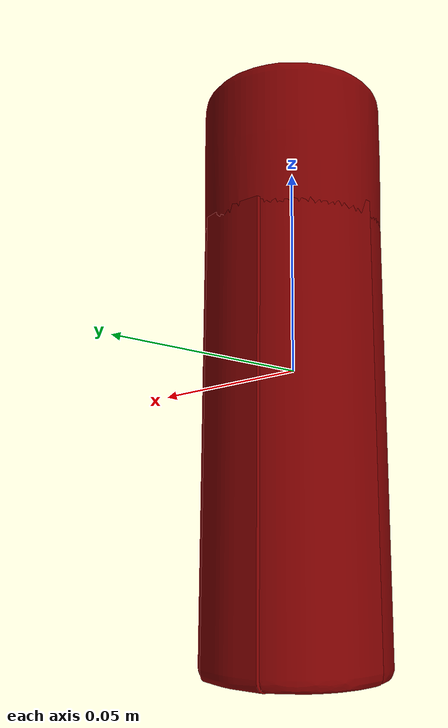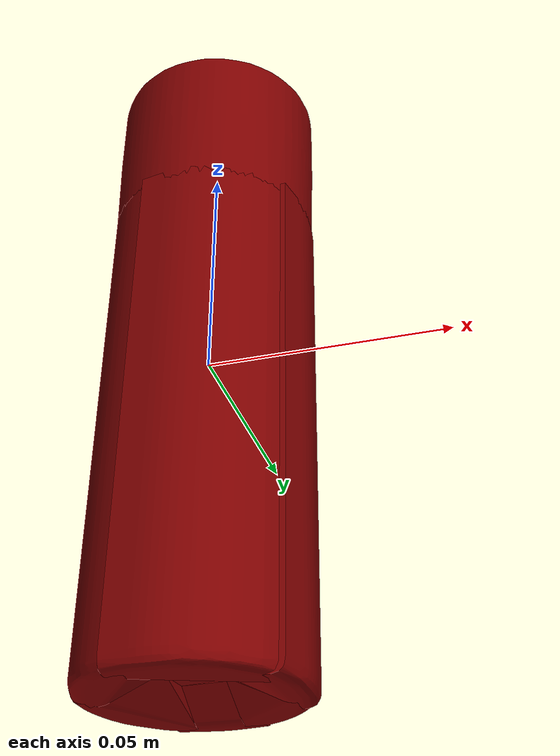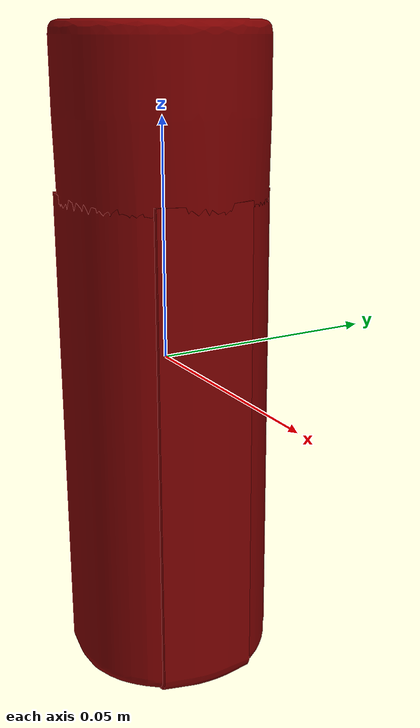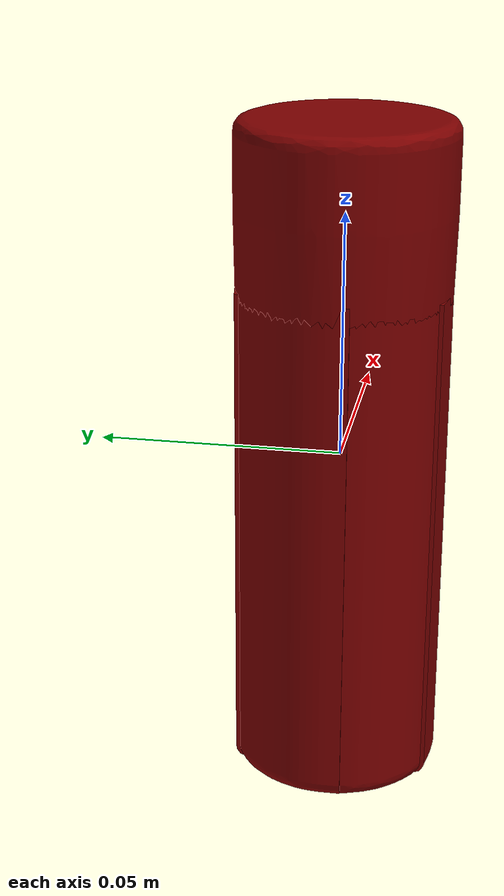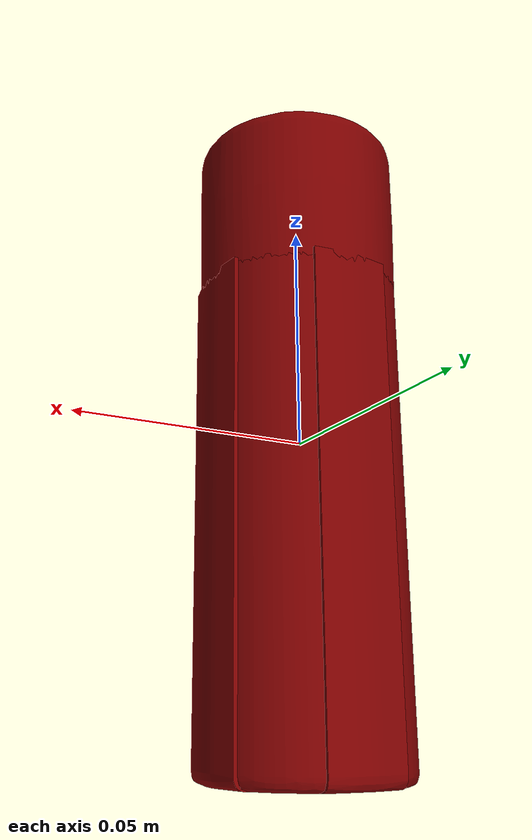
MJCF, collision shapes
<?xml version='1.0' encoding='utf-8'?>
<mujoco model="water_bottle_10">
  <asset>
    <mesh file="visual/model_normalized_0.obj" name="model_normalized_0_vis" scale="0.135 0.135 0.135" refquat="1.0 0.0 0.0 0.0" />
    <mesh file="visual/model_normalized_1.obj" name="model_normalized_1_vis" scale="0.135 0.135 0.135" refquat="1.0 0.0 0.0 0.0" />
    <material name="lambert2SG.001" specular="0.5" shininess="0.8964600110000001" rgba="0.029863 0.011039 0.011039 1.0" />
    <material name="phong1SG" specular="0.5" shininess="0.15999998099999999" rgba="1.000000 1.000000 1.000000 1.0" />
    <mesh file="collision/collision_mesh_collision_0.obj" name="water_collision_mesh_0" scale="0.135 0.135 0.135" refquat="1.0 0.0 0.0 0.0" />
    <mesh file="collision/collision_mesh_collision_1.obj" name="water_collision_mesh_1" scale="0.135 0.135 0.135" refquat="1.0 0.0 0.0 0.0" />
    <mesh file="collision/collision_mesh_collision_2.obj" name="water_collision_mesh_2" scale="0.135 0.135 0.135" refquat="1.0 0.0 0.0 0.0" />
    <mesh file="collision/collision_mesh_collision_3.obj" name="water_collision_mesh_3" scale="0.135 0.135 0.135" refquat="1.0 0.0 0.0 0.0" />
    <mesh file="collision/collision_mesh_collision_4.obj" name="water_collision_mesh_4" scale="0.135 0.135 0.135" refquat="1.0 0.0 0.0 0.0" />
    <mesh file="collision/collision_mesh_collision_5.obj" name="water_collision_mesh_5" scale="0.135 0.135 0.135" refquat="1.0 0.0 0.0 0.0" />
    <mesh file="collision/collision_mesh_collision_6.obj" name="water_collision_mesh_6" scale="0.135 0.135 0.135" refquat="1.0 0.0 0.0 0.0" />
    <mesh file="collision/collision_mesh_collision_7.obj" name="water_collision_mesh_7" scale="0.135 0.135 0.135" refquat="1.0 0.0 0.0 0.0" />
    </asset>
  <default>
    <default class="region">
      <geom group="1" conaffinity="0" contype="0" rgba="0 1 0 0" />
      </default>
    <default class="collision">
      <geom group="0" rgba="0.5 0 0 0.5" density="1000.0" />
      </default>
    </default>
  <worldbody>
    <body>
      <body name="object">
        <geom solimp="0.998 0.998 0.001" solref="0.001 1" density="100" friction="0.95 0.3 0.1" type="mesh" mesh="model_normalized_0_vis" conaffinity="0" contype="0" group="1" material="lambert2SG.001" />
        <geom solimp="0.998 0.998 0.001" solref="0.001 1" density="100" friction="0.95 0.3 0.1" type="mesh" mesh="model_normalized_1_vis" conaffinity="0" contype="0" group="1" material="phong1SG" />
        <geom class="region" name="reg_bbox" type="box" pos="5.7046950000001485e-05 -5.863049999999981e-05 -2.9578499999988184e-06" size="0.020755755900000002 0.020635350750000003 0.06749704215" />
        <geom mesh="water_collision_mesh_0" type="mesh" class="collision" />
        <geom mesh="water_collision_mesh_1" type="mesh" class="collision" />
        <geom mesh="water_collision_mesh_2" type="mesh" class="collision" />
        <geom mesh="water_collision_mesh_3" type="mesh" class="collision" />
        <geom mesh="water_collision_mesh_4" type="mesh" class="collision" />
        <geom mesh="water_collision_mesh_5" type="mesh" class="collision" />
        <geom mesh="water_collision_mesh_6" type="mesh" class="collision" />
        <geom mesh="water_collision_mesh_7" type="mesh" class="collision" />
        </body>
      </body>
    </worldbody>
  </mujoco>
